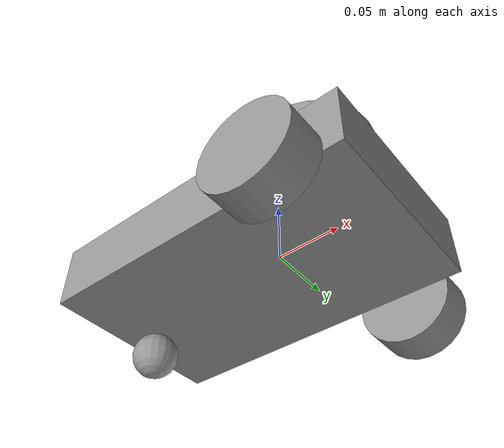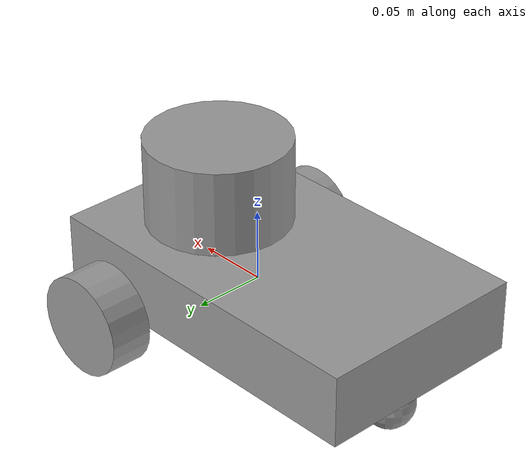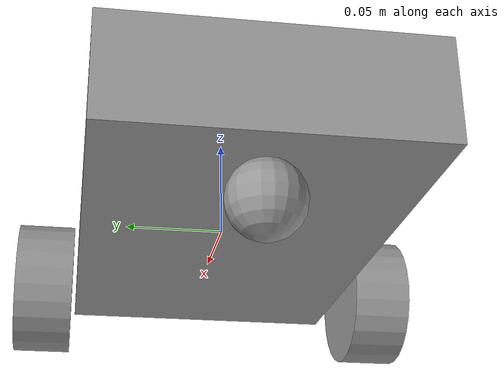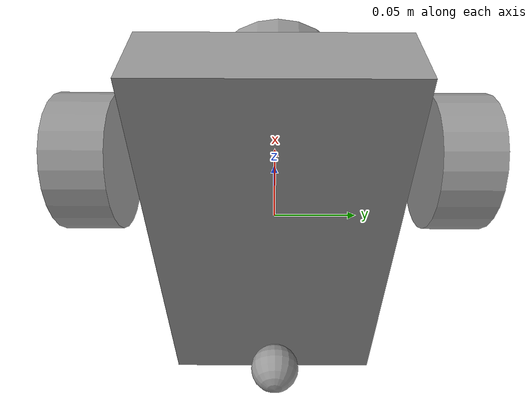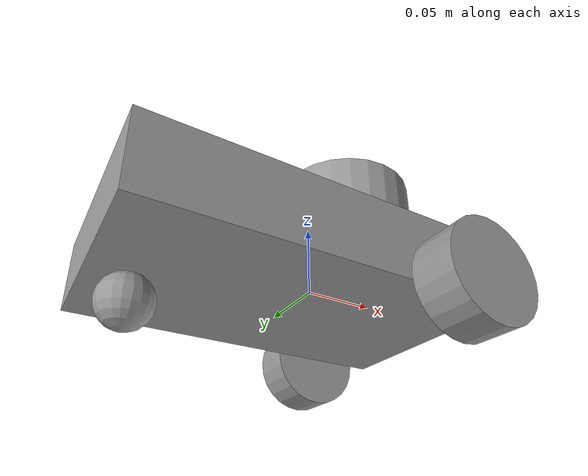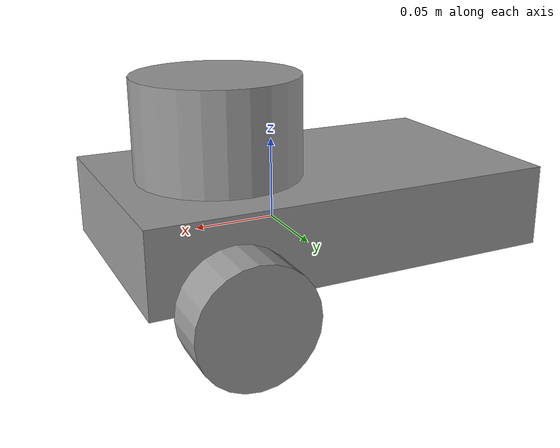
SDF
<?xml version='1.0'?>
<sdf version='1.5'>
  <model name='bfl_6'>
    <link name='link_1'>
      <inertial>
        <mass>0.387037</mass>
        <inertia>
          <ixx>0.126294</ixx>
          <ixy>0</ixy>
          <ixz>0</ixz>
          <iyy>0.0334995</iyy>
          <iyz>0</iyz>
          <izz>0.157301</izz>
        </inertia>
        <pose>0 0 0 0 -0 0</pose>
      </inertial>
      <pose>-0.022598 -0.000702 0.0075 0 -0 0</pose>
      <gravity>1</gravity>
      <self_collide>0</self_collide>
      <kinematic>0</kinematic>
      <enable_wind>0</enable_wind>
      <visual name='visual'>
        <pose>0 0 0 0 -0 0</pose>
        <geometry>
          <box>
            <size>0.25 0.15 0.05</size>
          </box>
        </geometry>
        <material>
          <lighting>1</lighting>
          <script>
            <uri>file://media/materials/scripts/gazebo.material</uri>
            <name>Gazebo/Grey</name>
          </script>
          <shader type='pixel'>
            <normal_map>__default__</normal_map>
          </shader>
          <ambient>0.3 0.3 0.3 1</ambient>
          <diffuse>0.7 0.7 0.7 1</diffuse>
          <specular>0.01 0.01 0.01 1</specular>
          <emissive>0 0 0 1</emissive>
        </material>
        <transparency>0</transparency>
        <cast_shadows>1</cast_shadows>
      </visual>
      <collision name='collision'>
        <laser_retro>0</laser_retro>
        <max_contacts>10</max_contacts>
        <pose>0 0 0 0 -0 0</pose>
        <geometry>
          <box>
            <size>0.25 0.15 0.05</size>
          </box>
        </geometry>
        <surface>
          <friction>
            <ode>
              <mu>1</mu>
              <mu2>1</mu2>
              <fdir1>0 0 0</fdir1>
              <slip1>0</slip1>
              <slip2>0</slip2>
            </ode>
            <torsional>
              <coefficient>1</coefficient>
              <patch_radius>0</patch_radius>
              <surface_radius>0</surface_radius>
              <use_patch_radius>1</use_patch_radius>
              <ode>
                <slip>0</slip>
              </ode>
            </torsional>
          </friction>
          <bounce>
            <restitution_coefficient>0</restitution_coefficient>
            <threshold>1e+06</threshold>
          </bounce>
          <contact>
            <collide_without_contact>0</collide_without_contact>
            <collide_without_contact_bitmask>1</collide_without_contact_bitmask>
            <collide_bitmask>1</collide_bitmask>
            <ode>
              <soft_cfm>0</soft_cfm>
              <soft_erp>0.2</soft_erp>
              <kp>1e+13</kp>
              <kd>1</kd>
              <max_vel>0.01</max_vel>
              <min_depth>0</min_depth>
            </ode>
            <bullet>
              <split_impulse>1</split_impulse>
              <split_impulse_penetration_threshold>-0.01</split_impulse_penetration_threshold>
              <soft_cfm>0</soft_cfm>
              <soft_erp>0.2</soft_erp>
              <kp>1e+13</kp>
              <kd>1</kd>
            </bullet>
          </contact>
        </surface>
      </collision>
    </link>
    <link name='link_4'>
      <inertial>
        <mass>1</mass>
        <inertia>
          <ixx>0.145833</ixx>
          <ixy>0</ixy>
          <ixz>0</ixz>
          <iyy>0.145833</iyy>
          <iyz>0</iyz>
          <izz>0.125</izz>
        </inertia>
        <pose>0 0 0 0 -0 0</pose>
      </inertial>
      <pose>0.054967 0.091695 -0.0175 1.5708 -0 0</pose>
      <gravity>1</gravity>
      <self_collide>0</self_collide>
      <kinematic>0</kinematic>
      <enable_wind>0</enable_wind>
      <visual name='visual'>
        <pose>0 0 0 0 -0 0</pose>
        <geometry>
          <cylinder>
            <radius>0.035</radius>
            <length>0.03</length>
          </cylinder>
        </geometry>
        <material>
          <lighting>1</lighting>
          <script>
            <uri>file://media/materials/scripts/gazebo.material</uri>
            <name>Gazebo/Grey</name>
          </script>
          <shader type='pixel'>
            <normal_map>__default__</normal_map>
          </shader>
          <ambient>0.3 0.3 0.3 1</ambient>
          <diffuse>0.7 0.7 0.7 1</diffuse>
          <specular>0.01 0.01 0.01 1</specular>
          <emissive>0 0 0 1</emissive>
        </material>
        <transparency>0</transparency>
        <cast_shadows>1</cast_shadows>
      </visual>
      <collision name='collision'>
        <laser_retro>0</laser_retro>
        <max_contacts>10</max_contacts>
        <pose>0 0 0 0 -0 0</pose>
        <geometry>
          <cylinder>
            <radius>0.035</radius>
            <length>0.03</length>
          </cylinder>
        </geometry>
        <surface>
          <friction>
            <ode>
              <mu>1</mu>
              <mu2>1</mu2>
              <fdir1>0 0 0</fdir1>
              <slip1>0</slip1>
              <slip2>0</slip2>
            </ode>
            <torsional>
              <coefficient>1</coefficient>
              <patch_radius>0</patch_radius>
              <surface_radius>0</surface_radius>
              <use_patch_radius>1</use_patch_radius>
              <ode>
                <slip>0</slip>
              </ode>
            </torsional>
          </friction>
          <bounce>
            <restitution_coefficient>0</restitution_coefficient>
            <threshold>1e+06</threshold>
          </bounce>
          <contact>
            <collide_without_contact>0</collide_without_contact>
            <collide_without_contact_bitmask>1</collide_without_contact_bitmask>
            <collide_bitmask>1</collide_bitmask>
            <ode>
              <soft_cfm>0</soft_cfm>
              <soft_erp>0.2</soft_erp>
              <kp>1e+13</kp>
              <kd>1</kd>
              <max_vel>0.01</max_vel>
              <min_depth>0</min_depth>
            </ode>
            <bullet>
              <split_impulse>1</split_impulse>
              <split_impulse_penetration_threshold>-0.01</split_impulse_penetration_threshold>
              <soft_cfm>0</soft_cfm>
              <soft_erp>0.2</soft_erp>
              <kp>1e+13</kp>
              <kd>1</kd>
            </bullet>
          </contact>
        </surface>
      </collision>
    </link>
    <link name='link_4_clone'>
      <inertial>
        <mass>1</mass>
        <inertia>
          <ixx>0.145833</ixx>
          <ixy>0</ixy>
          <ixz>0</ixz>
          <iyy>0.145833</iyy>
          <iyz>0</iyz>
          <izz>0.125</izz>
        </inertia>
        <pose>0 0 0 0 -0 0</pose>
      </inertial>
      <pose>0.054967 -0.093606 -0.0175 1.5708 -0 0</pose>
      <gravity>1</gravity>
      <self_collide>0</self_collide>
      <kinematic>0</kinematic>
      <enable_wind>0</enable_wind>
      <visual name='visual'>
        <pose>0 0 0 0 -0 0</pose>
        <geometry>
          <cylinder>
            <radius>0.035</radius>
            <length>0.03</length>
          </cylinder>
        </geometry>
        <material>
          <lighting>1</lighting>
          <script>
            <uri>file://media/materials/scripts/gazebo.material</uri>
            <name>Gazebo/Grey</name>
          </script>
          <shader type='pixel'>
            <normal_map>__default__</normal_map>
          </shader>
          <ambient>0.3 0.3 0.3 1</ambient>
          <diffuse>0.7 0.7 0.7 1</diffuse>
          <specular>0.01 0.01 0.01 1</specular>
          <emissive>0 0 0 1</emissive>
        </material>
        <transparency>0</transparency>
        <cast_shadows>1</cast_shadows>
      </visual>
      <collision name='collision'>
        <laser_retro>0</laser_retro>
        <max_contacts>10</max_contacts>
        <pose>0 0 0 0 -0 0</pose>
        <geometry>
          <cylinder>
            <radius>0.035</radius>
            <length>0.03</length>
          </cylinder>
        </geometry>
        <surface>
          <friction>
            <ode>
              <mu>1</mu>
              <mu2>1</mu2>
              <fdir1>0 0 0</fdir1>
              <slip1>0</slip1>
              <slip2>0</slip2>
            </ode>
            <torsional>
              <coefficient>1</coefficient>
              <patch_radius>0</patch_radius>
              <surface_radius>0</surface_radius>
              <use_patch_radius>1</use_patch_radius>
              <ode>
                <slip>0</slip>
              </ode>
            </torsional>
          </friction>
          <bounce>
            <restitution_coefficient>0</restitution_coefficient>
            <threshold>1e+06</threshold>
          </bounce>
          <contact>
            <collide_without_contact>0</collide_without_contact>
            <collide_without_contact_bitmask>1</collide_without_contact_bitmask>
            <collide_bitmask>1</collide_bitmask>
            <ode>
              <soft_cfm>0</soft_cfm>
              <soft_erp>0.2</soft_erp>
              <kp>1e+13</kp>
              <kd>1</kd>
              <max_vel>0.01</max_vel>
              <min_depth>0</min_depth>
            </ode>
            <bullet>
              <split_impulse>1</split_impulse>
              <split_impulse_penetration_threshold>-0.01</split_impulse_penetration_threshold>
              <soft_cfm>0</soft_cfm>
              <soft_erp>0.2</soft_erp>
              <kp>1e+13</kp>
              <kd>1</kd>
            </bullet>
          </contact>
        </surface>
      </collision>
    </link>
    <link name='link_5'>
      <inertial>
        <mass>1</mass>
        <inertia>
          <ixx>0.1</ixx>
          <ixy>0</ixy>
          <ixz>0</ixz>
          <iyy>0.1</iyy>
          <iyz>0</iyz>
          <izz>0.1</izz>
        </inertia>
        <pose>0 0 0 0 -0 0</pose>
      </inertial>
      <pose>-0.1223 0.000716 -0.035 0 -0 0</pose>
      <gravity>1</gravity>
      <self_collide>0</self_collide>
      <kinematic>0</kinematic>
      <enable_wind>0</enable_wind>
      <visual name='visual'>
        <pose>0 0 0 0 -0 0</pose>
        <geometry>
          <sphere>
            <radius>0.0175</radius>
          </sphere>
        </geometry>
        <material>
          <lighting>1</lighting>
          <script>
            <uri>file://media/materials/scripts/gazebo.material</uri>
            <name>Gazebo/Grey</name>
          </script>
          <shader type='pixel'>
            <normal_map>__default__</normal_map>
          </shader>
          <ambient>0.3 0.3 0.3 1</ambient>
          <diffuse>0.7 0.7 0.7 1</diffuse>
          <specular>0.01 0.01 0.01 1</specular>
          <emissive>0 0 0 1</emissive>
        </material>
        <transparency>0</transparency>
        <cast_shadows>1</cast_shadows>
      </visual>
      <collision name='collision'>
        <laser_retro>0</laser_retro>
        <max_contacts>10</max_contacts>
        <pose>0 0 0 0 -0 0</pose>
        <geometry>
          <sphere>
            <radius>0.0175</radius>
          </sphere>
        </geometry>
        <surface>
          <friction>
            <ode>
              <mu>1</mu>
              <mu2>1</mu2>
              <fdir1>0 0 0</fdir1>
              <slip1>0</slip1>
              <slip2>0</slip2>
            </ode>
            <torsional>
              <coefficient>1</coefficient>
              <patch_radius>0</patch_radius>
              <surface_radius>0</surface_radius>
              <use_patch_radius>1</use_patch_radius>
              <ode>
                <slip>0</slip>
              </ode>
            </torsional>
          </friction>
          <bounce>
            <restitution_coefficient>0</restitution_coefficient>
            <threshold>1e+06</threshold>
          </bounce>
          <contact>
            <collide_without_contact>0</collide_without_contact>
            <collide_without_contact_bitmask>1</collide_without_contact_bitmask>
            <collide_bitmask>1</collide_bitmask>
            <ode>
              <soft_cfm>0</soft_cfm>
              <soft_erp>0.2</soft_erp>
              <kp>1e+13</kp>
              <kd>1</kd>
              <max_vel>0.01</max_vel>
              <min_depth>0</min_depth>
            </ode>
            <bullet>
              <split_impulse>1</split_impulse>
              <split_impulse_penetration_threshold>-0.01</split_impulse_penetration_threshold>
              <soft_cfm>0</soft_cfm>
              <soft_erp>0.2</soft_erp>
              <kp>1e+13</kp>
              <kd>1</kd>
            </bullet>
          </contact>
        </surface>
      </collision>
    </link>
    <link name='link_6'>
      <inertial>
        <mass>1</mass>
        <inertia>
          <ixx>0.145833</ixx>
          <ixy>0</ixy>
          <ixz>0</ixz>
          <iyy>0.145833</iyy>
          <iyz>0</iyz>
          <izz>0.125</izz>
        </inertia>
        <pose>0 0 0 0 -0 0</pose>
      </inertial>
      <pose>0.034963 0.001898 0.0625 0 -0 0</pose>
      <gravity>1</gravity>
      <self_collide>0</self_collide>
      <kinematic>0</kinematic>
      <enable_wind>0</enable_wind>
      <visual name='visual'>
        <pose>0 0 0 0 -0 0</pose>
        <geometry>
          <cylinder>
            <radius>0.05</radius>
            <length>0.06</length>
          </cylinder>
        </geometry>
        <material>
          <lighting>1</lighting>
          <script>
            <uri>file://media/materials/scripts/gazebo.material</uri>
            <name>Gazebo/Grey</name>
          </script>
          <shader type='pixel'>
            <normal_map>__default__</normal_map>
          </shader>
          <ambient>0.3 0.3 0.3 1</ambient>
          <diffuse>0.7 0.7 0.7 1</diffuse>
          <specular>0.01 0.01 0.01 1</specular>
          <emissive>0 0 0 1</emissive>
        </material>
        <transparency>0</transparency>
        <cast_shadows>1</cast_shadows>
      </visual>
      <collision name='collision'>
        <laser_retro>0</laser_retro>
        <max_contacts>10</max_contacts>
        <pose>0 0 0 0 -0 0</pose>
        <geometry>
          <cylinder>
            <radius>0.05</radius>
            <length>0.06</length>
          </cylinder>
        </geometry>
        <surface>
          <friction>
            <ode>
              <mu>1</mu>
              <mu2>1</mu2>
              <fdir1>0 0 0</fdir1>
              <slip1>0</slip1>
              <slip2>0</slip2>
            </ode>
            <torsional>
              <coefficient>1</coefficient>
              <patch_radius>0</patch_radius>
              <surface_radius>0</surface_radius>
              <use_patch_radius>1</use_patch_radius>
              <ode>
                <slip>0</slip>
              </ode>
            </torsional>
          </friction>
          <bounce>
            <restitution_coefficient>0</restitution_coefficient>
            <threshold>1e+06</threshold>
          </bounce>
          <contact>
            <collide_without_contact>0</collide_without_contact>
            <collide_without_contact_bitmask>1</collide_without_contact_bitmask>
            <collide_bitmask>1</collide_bitmask>
            <ode>
              <soft_cfm>0</soft_cfm>
              <soft_erp>0.2</soft_erp>
              <kp>1e+13</kp>
              <kd>1</kd>
              <max_vel>0.01</max_vel>
              <min_depth>0</min_depth>
            </ode>
            <bullet>
              <split_impulse>1</split_impulse>
              <split_impulse_penetration_threshold>-0.01</split_impulse_penetration_threshold>
              <soft_cfm>0</soft_cfm>
              <soft_erp>0.2</soft_erp>
              <kp>1e+13</kp>
              <kd>1</kd>
            </bullet>
          </contact>
        </surface>
      </collision>
    </link>
    <joint name='link_1_left_wheel' type='revolute'>
      <parent>link_1</parent>
      <child>link_4</child>
      <pose>0 0 0 0 -0 0</pose>
      <axis>
        <xyz>0 0 1</xyz>
        <limit>
          <lower>-1.79769e+308</lower>
          <upper>1.79769e+308</upper>
          <effort>-1</effort>
          <velocity>-1</velocity>
        </limit>
        <dynamics>
          <spring_reference>0</spring_reference>
          <spring_stiffness>0</spring_stiffness>
          <damping>0</damping>
          <friction>0</friction>
        </dynamics>
      </axis>
      <physics>
        <ode>
          <limit>
            <cfm>0</cfm>
            <erp>0.2</erp>
          </limit>
          <suspension>
            <cfm>0</cfm>
            <erp>0.2</erp>
          </suspension>
        </ode>
      </physics>
    </joint>
    <joint name='link_1_right_wheel' type='revolute'>
      <parent>link_1</parent>
      <child>link_4_clone</child>
      <pose>0 0 0 0 -0 0</pose>
      <axis>
        <xyz>0 0 1</xyz>
        <limit>
          <lower>-1.79769e+308</lower>
          <upper>1.79769e+308</upper>
          <effort>-1</effort>
          <velocity>-1</velocity>
        </limit>
        <dynamics>
          <spring_reference>0</spring_reference>
          <spring_stiffness>0</spring_stiffness>
          <damping>0</damping>
          <friction>0</friction>
        </dynamics>
      </axis>
      <physics>
        <ode>
          <limit>
            <cfm>0</cfm>
            <erp>0.2</erp>
          </limit>
          <suspension>
            <cfm>0</cfm>
            <erp>0.2</erp>
          </suspension>
        </ode>
      </physics>
    </joint>
    <joint name='link_1_castor_wheel' type='fixed'>
      <parent>link_1</parent>
      <child>link_5</child>
      <pose>0 0 0 0 -0 0</pose>
      <physics>
        <ode>
          <limit>
            <cfm>0</cfm>
            <erp>0.2</erp>
          </limit>
          <suspension>
            <cfm>0</cfm>
            <erp>0.2</erp>
          </suspension>
        </ode>
      </physics>
    </joint>
    <joint name='link_1_lidar' type='fixed'>
      <parent>link_1</parent>
      <child>link_6</child>
      <pose>0 0 0 0 -0 0</pose>
      <physics>
        <ode>
          <limit>
            <cfm>0</cfm>
            <erp>0.2</erp>
          </limit>
          <suspension>
            <cfm>0</cfm>
            <erp>0.2</erp>
          </suspension>
        </ode>
      </physics>
    </joint>
    <static>0</static>
    <allow_auto_disable>1</allow_auto_disable>
  </model>
</sdf>
